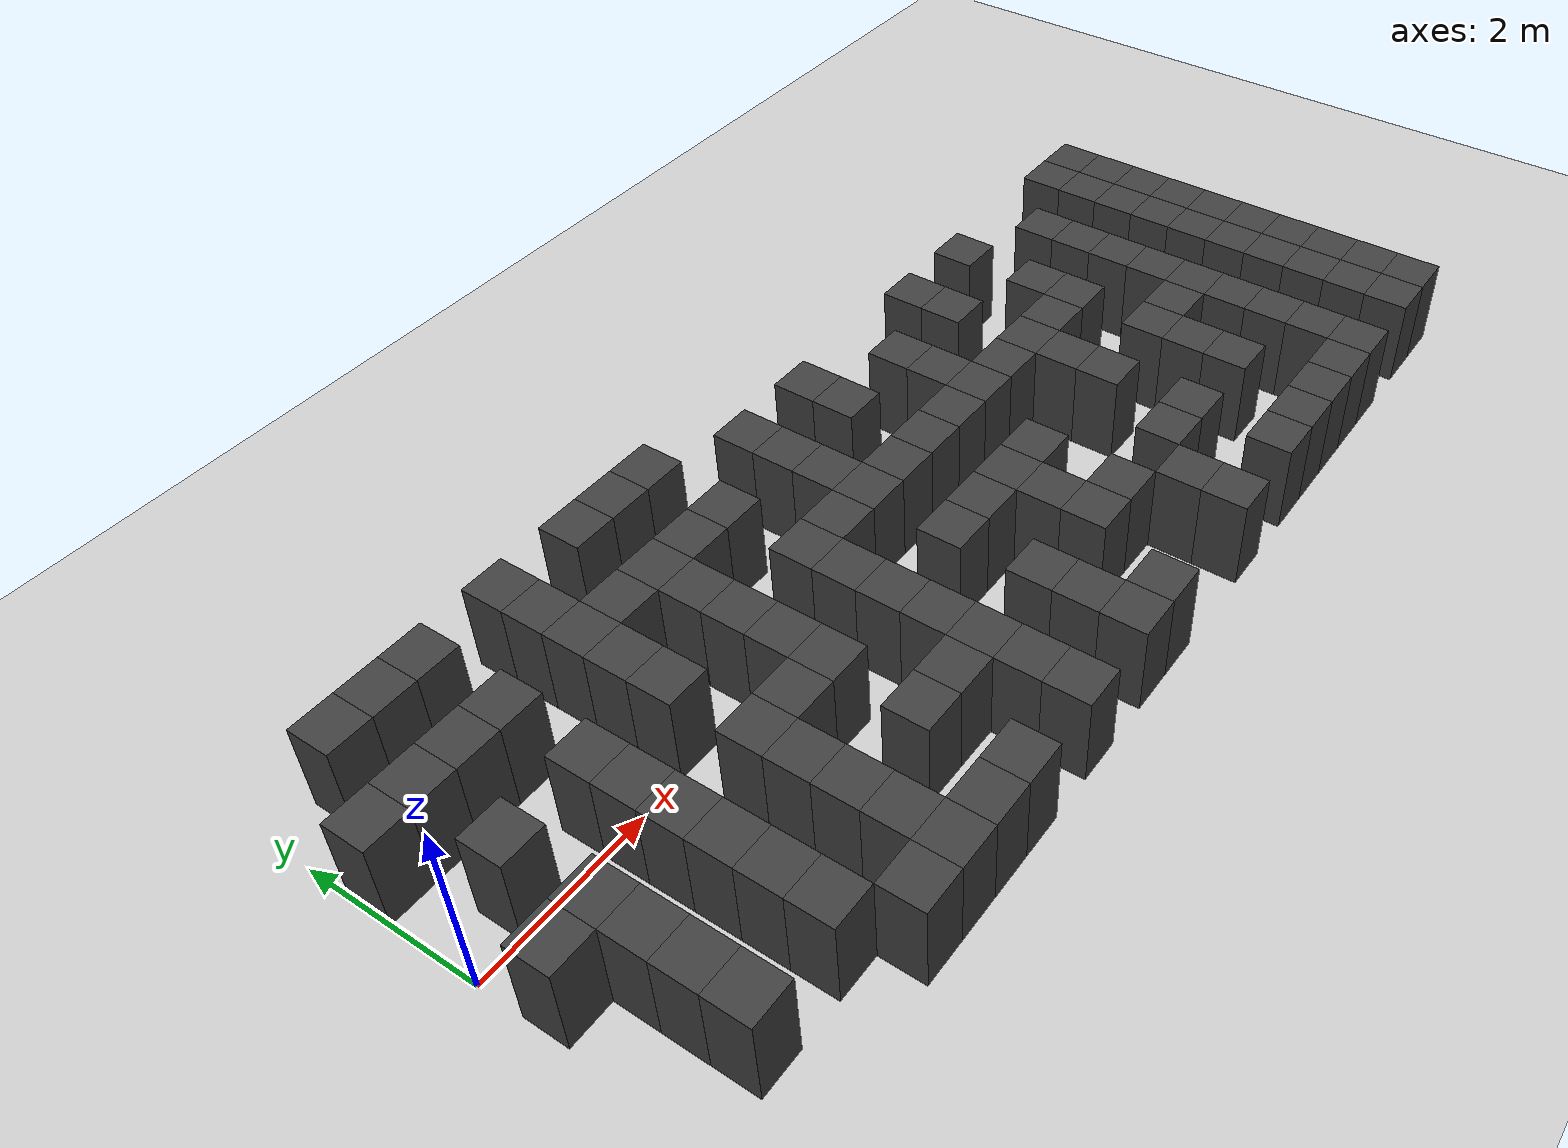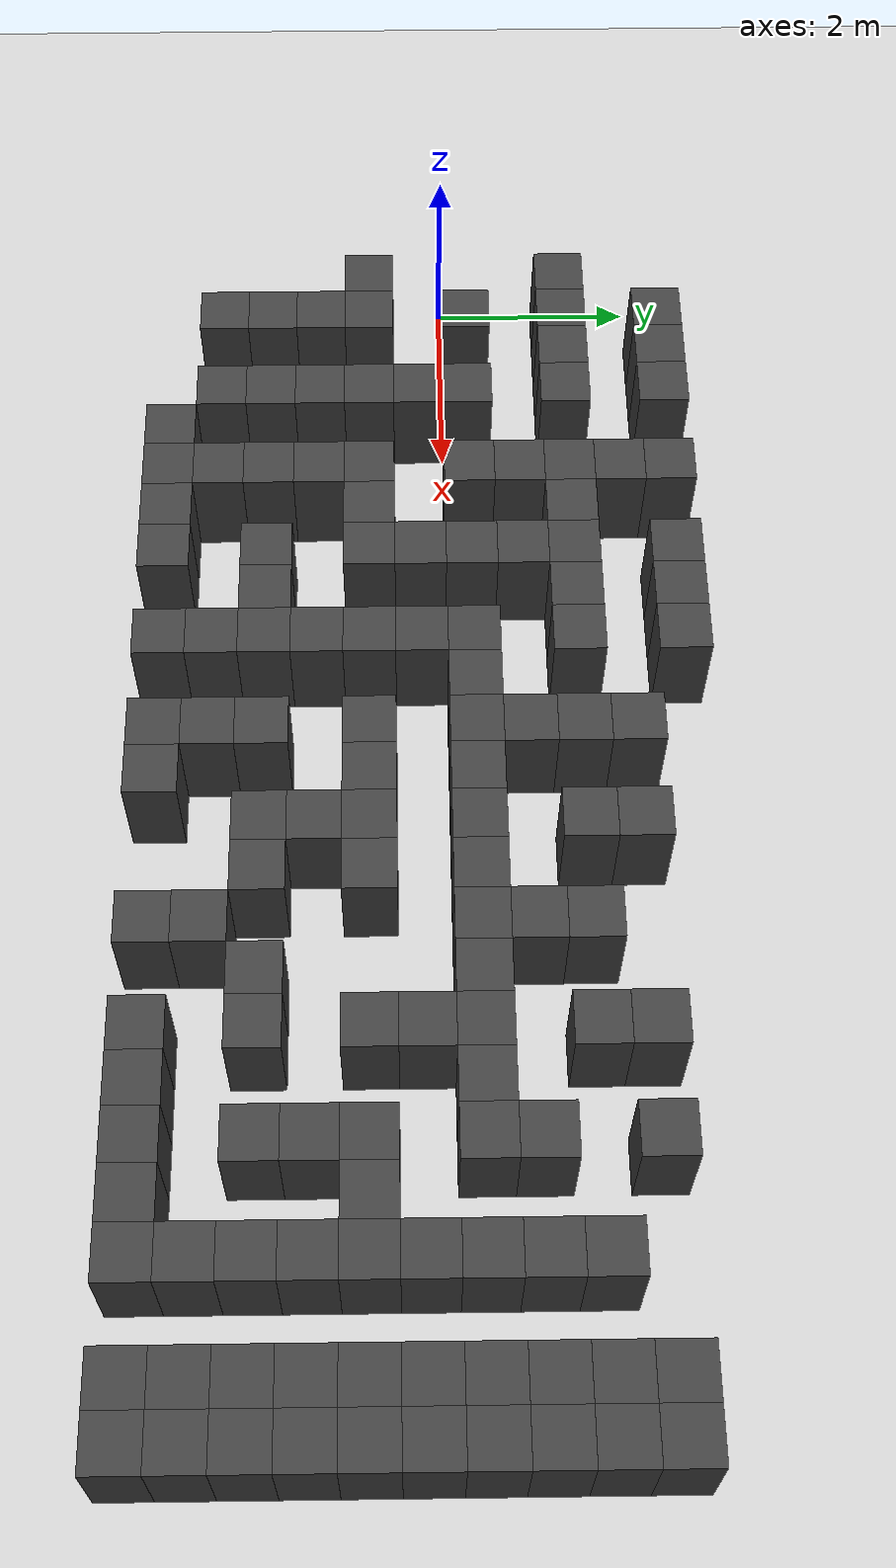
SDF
<sdf version="1.7">
 <world name="map_17508">
  <model name="ground_plane">
   <static>true</static>
   <link name="link">
    <collision name="collision">
     <geometry><plane><normal>0 0 1</normal><size>200 200</size></plane></geometry>
    </collision>
    <visual name="visual">
     <geometry><plane><normal>0 0 1</normal><size>200 200</size></plane></geometry>
     <material><ambient>0.8 0.8 0.8 1</ambient><diffuse>0.8 0.8 0.8 1</diffuse></material>
    </visual>
   </link>
  </model>
  <model name="maze_environment">
   <static>true</static>
   <link name="wall_510">
    <pose>0.750 2.250 0.500 0 0 0</pose>
    <collision name="col"><geometry><box><size>0.5 0.5 1.0</size></box></geometry></collision>
    <visual name="vis">
     <geometry><box><size>0.5 0.5 1.0</size></box></geometry>
     <material><ambient>0.15 0.15 0.15 1</ambient><diffuse>0.25 0.25 0.25 1</diffuse></material>
    </visual>
   </link>
   <link name="wall_511">
    <pose>1.250 2.250 0.500 0 0 0</pose>
    <collision name="col"><geometry><box><size>0.5 0.5 1.0</size></box></geometry></collision>
    <visual name="vis">
     <geometry><box><size>0.5 0.5 1.0</size></box></geometry>
     <material><ambient>0.15 0.15 0.15 1</ambient><diffuse>0.25 0.25 0.25 1</diffuse></material>
    </visual>
   </link>
   <link name="wall_512">
    <pose>1.750 2.250 0.500 0 0 0</pose>
    <collision name="col"><geometry><box><size>0.5 0.5 1.0</size></box></geometry></collision>
    <visual name="vis">
     <geometry><box><size>0.5 0.5 1.0</size></box></geometry>
     <material><ambient>0.15 0.15 0.15 1</ambient><diffuse>0.25 0.25 0.25 1</diffuse></material>
    </visual>
   </link>
   <link name="wall_513">
    <pose>2.750 2.250 0.500 0 0 0</pose>
    <collision name="col"><geometry><box><size>0.5 0.5 1.0</size></box></geometry></collision>
    <visual name="vis">
     <geometry><box><size>0.5 0.5 1.0</size></box></geometry>
     <material><ambient>0.15 0.15 0.15 1</ambient><diffuse>0.25 0.25 0.25 1</diffuse></material>
    </visual>
   </link>
   <link name="wall_514">
    <pose>3.750 2.250 0.500 0 0 0</pose>
    <collision name="col"><geometry><box><size>0.5 0.5 1.0</size></box></geometry></collision>
    <visual name="vis">
     <geometry><box><size>0.5 0.5 1.0</size></box></geometry>
     <material><ambient>0.15 0.15 0.15 1</ambient><diffuse>0.25 0.25 0.25 1</diffuse></material>
    </visual>
   </link>
   <link name="wall_515">
    <pose>4.250 2.250 0.500 0 0 0</pose>
    <collision name="col"><geometry><box><size>0.5 0.5 1.0</size></box></geometry></collision>
    <visual name="vis">
     <geometry><box><size>0.5 0.5 1.0</size></box></geometry>
     <material><ambient>0.15 0.15 0.15 1</ambient><diffuse>0.25 0.25 0.25 1</diffuse></material>
    </visual>
   </link>
   <link name="wall_516">
    <pose>4.750 2.250 0.500 0 0 0</pose>
    <collision name="col"><geometry><box><size>0.5 0.5 1.0</size></box></geometry></collision>
    <visual name="vis">
     <geometry><box><size>0.5 0.5 1.0</size></box></geometry>
     <material><ambient>0.15 0.15 0.15 1</ambient><diffuse>0.25 0.25 0.25 1</diffuse></material>
    </visual>
   </link>
   <link name="wall_535">
    <pose>2.750 1.750 0.500 0 0 0</pose>
    <collision name="col"><geometry><box><size>0.5 0.5 1.0</size></box></geometry></collision>
    <visual name="vis">
     <geometry><box><size>0.5 0.5 1.0</size></box></geometry>
     <material><ambient>0.15 0.15 0.15 1</ambient><diffuse>0.25 0.25 0.25 1</diffuse></material>
    </visual>
   </link>
   <link name="wall_536">
    <pose>5.750 1.750 0.500 0 0 0</pose>
    <collision name="col"><geometry><box><size>0.5 0.5 1.0</size></box></geometry></collision>
    <visual name="vis">
     <geometry><box><size>0.5 0.5 1.0</size></box></geometry>
     <material><ambient>0.15 0.15 0.15 1</ambient><diffuse>0.25 0.25 0.25 1</diffuse></material>
    </visual>
   </link>
   <link name="wall_537">
    <pose>6.750 1.750 0.500 0 0 0</pose>
    <collision name="col"><geometry><box><size>0.5 0.5 1.0</size></box></geometry></collision>
    <visual name="vis">
     <geometry><box><size>0.5 0.5 1.0</size></box></geometry>
     <material><ambient>0.15 0.15 0.15 1</ambient><diffuse>0.25 0.25 0.25 1</diffuse></material>
    </visual>
   </link>
   <link name="wall_538">
    <pose>8.750 1.750 0.500 0 0 0</pose>
    <collision name="col"><geometry><box><size>0.5 0.5 1.0</size></box></geometry></collision>
    <visual name="vis">
     <geometry><box><size>0.5 0.5 1.0</size></box></geometry>
     <material><ambient>0.15 0.15 0.15 1</ambient><diffuse>0.25 0.25 0.25 1</diffuse></material>
    </visual>
   </link>
   <link name="wall_539">
    <pose>9.750 1.750 0.500 0 0 0</pose>
    <collision name="col"><geometry><box><size>0.5 0.5 1.0</size></box></geometry></collision>
    <visual name="vis">
     <geometry><box><size>0.5 0.5 1.0</size></box></geometry>
     <material><ambient>0.15 0.15 0.15 1</ambient><diffuse>0.25 0.25 0.25 1</diffuse></material>
    </visual>
   </link>
   <link name="wall_540">
    <pose>11.750 1.750 0.500 0 0 0</pose>
    <collision name="col"><geometry><box><size>0.5 0.5 1.0</size></box></geometry></collision>
    <visual name="vis">
     <geometry><box><size>0.5 0.5 1.0</size></box></geometry>
     <material><ambient>0.15 0.15 0.15 1</ambient><diffuse>0.25 0.25 0.25 1</diffuse></material>
    </visual>
   </link>
   <link name="wall_541">
    <pose>12.250 1.750 0.500 0 0 0</pose>
    <collision name="col"><geometry><box><size>0.5 0.5 1.0</size></box></geometry></collision>
    <visual name="vis">
     <geometry><box><size>0.5 0.5 1.0</size></box></geometry>
     <material><ambient>0.15 0.15 0.15 1</ambient><diffuse>0.25 0.25 0.25 1</diffuse></material>
    </visual>
   </link>
   <link name="wall_560">
    <pose>0.250 1.250 0.500 0 0 0</pose>
    <collision name="col"><geometry><box><size>0.5 0.5 1.0</size></box></geometry></collision>
    <visual name="vis">
     <geometry><box><size>0.5 0.5 1.0</size></box></geometry>
     <material><ambient>0.15 0.15 0.15 1</ambient><diffuse>0.25 0.25 0.25 1</diffuse></material>
    </visual>
   </link>
   <link name="wall_561">
    <pose>0.750 1.250 0.500 0 0 0</pose>
    <collision name="col"><geometry><box><size>0.5 0.5 1.0</size></box></geometry></collision>
    <visual name="vis">
     <geometry><box><size>0.5 0.5 1.0</size></box></geometry>
     <material><ambient>0.15 0.15 0.15 1</ambient><diffuse>0.25 0.25 0.25 1</diffuse></material>
    </visual>
   </link>
   <link name="wall_562">
    <pose>1.250 1.250 0.500 0 0 0</pose>
    <collision name="col"><geometry><box><size>0.5 0.5 1.0</size></box></geometry></collision>
    <visual name="vis">
     <geometry><box><size>0.5 0.5 1.0</size></box></geometry>
     <material><ambient>0.15 0.15 0.15 1</ambient><diffuse>0.25 0.25 0.25 1</diffuse></material>
    </visual>
   </link>
   <link name="wall_563">
    <pose>1.750 1.250 0.500 0 0 0</pose>
    <collision name="col"><geometry><box><size>0.5 0.5 1.0</size></box></geometry></collision>
    <visual name="vis">
     <geometry><box><size>0.5 0.5 1.0</size></box></geometry>
     <material><ambient>0.15 0.15 0.15 1</ambient><diffuse>0.25 0.25 0.25 1</diffuse></material>
    </visual>
   </link>
   <link name="wall_564">
    <pose>2.750 1.250 0.500 0 0 0</pose>
    <collision name="col"><geometry><box><size>0.5 0.5 1.0</size></box></geometry></collision>
    <visual name="vis">
     <geometry><box><size>0.5 0.5 1.0</size></box></geometry>
     <material><ambient>0.15 0.15 0.15 1</ambient><diffuse>0.25 0.25 0.25 1</diffuse></material>
    </visual>
   </link>
   <link name="wall_565">
    <pose>3.250 1.250 0.500 0 0 0</pose>
    <collision name="col"><geometry><box><size>0.5 0.5 1.0</size></box></geometry></collision>
    <visual name="vis">
     <geometry><box><size>0.5 0.5 1.0</size></box></geometry>
     <material><ambient>0.15 0.15 0.15 1</ambient><diffuse>0.25 0.25 0.25 1</diffuse></material>
    </visual>
   </link>
   <link name="wall_566">
    <pose>3.750 1.250 0.500 0 0 0</pose>
    <collision name="col"><geometry><box><size>0.5 0.5 1.0</size></box></geometry></collision>
    <visual name="vis">
     <geometry><box><size>0.5 0.5 1.0</size></box></geometry>
     <material><ambient>0.15 0.15 0.15 1</ambient><diffuse>0.25 0.25 0.25 1</diffuse></material>
    </visual>
   </link>
   <link name="wall_567">
    <pose>4.250 1.250 0.500 0 0 0</pose>
    <collision name="col"><geometry><box><size>0.5 0.5 1.0</size></box></geometry></collision>
    <visual name="vis">
     <geometry><box><size>0.5 0.5 1.0</size></box></geometry>
     <material><ambient>0.15 0.15 0.15 1</ambient><diffuse>0.25 0.25 0.25 1</diffuse></material>
    </visual>
   </link>
   <link name="wall_568">
    <pose>4.750 1.250 0.500 0 0 0</pose>
    <collision name="col"><geometry><box><size>0.5 0.5 1.0</size></box></geometry></collision>
    <visual name="vis">
     <geometry><box><size>0.5 0.5 1.0</size></box></geometry>
     <material><ambient>0.15 0.15 0.15 1</ambient><diffuse>0.25 0.25 0.25 1</diffuse></material>
    </visual>
   </link>
   <link name="wall_569">
    <pose>5.750 1.250 0.500 0 0 0</pose>
    <collision name="col"><geometry><box><size>0.5 0.5 1.0</size></box></geometry></collision>
    <visual name="vis">
     <geometry><box><size>0.5 0.5 1.0</size></box></geometry>
     <material><ambient>0.15 0.15 0.15 1</ambient><diffuse>0.25 0.25 0.25 1</diffuse></material>
    </visual>
   </link>
   <link name="wall_570">
    <pose>6.750 1.250 0.500 0 0 0</pose>
    <collision name="col"><geometry><box><size>0.5 0.5 1.0</size></box></geometry></collision>
    <visual name="vis">
     <geometry><box><size>0.5 0.5 1.0</size></box></geometry>
     <material><ambient>0.15 0.15 0.15 1</ambient><diffuse>0.25 0.25 0.25 1</diffuse></material>
    </visual>
   </link>
   <link name="wall_571">
    <pose>7.750 1.250 0.500 0 0 0</pose>
    <collision name="col"><geometry><box><size>0.5 0.5 1.0</size></box></geometry></collision>
    <visual name="vis">
     <geometry><box><size>0.5 0.5 1.0</size></box></geometry>
     <material><ambient>0.15 0.15 0.15 1</ambient><diffuse>0.25 0.25 0.25 1</diffuse></material>
    </visual>
   </link>
   <link name="wall_572">
    <pose>8.750 1.250 0.500 0 0 0</pose>
    <collision name="col"><geometry><box><size>0.5 0.5 1.0</size></box></geometry></collision>
    <visual name="vis">
     <geometry><box><size>0.5 0.5 1.0</size></box></geometry>
     <material><ambient>0.15 0.15 0.15 1</ambient><diffuse>0.25 0.25 0.25 1</diffuse></material>
    </visual>
   </link>
   <link name="wall_573">
    <pose>10.750 1.250 0.500 0 0 0</pose>
    <collision name="col"><geometry><box><size>0.5 0.5 1.0</size></box></geometry></collision>
    <visual name="vis">
     <geometry><box><size>0.5 0.5 1.0</size></box></geometry>
     <material><ambient>0.15 0.15 0.15 1</ambient><diffuse>0.25 0.25 0.25 1</diffuse></material>
    </visual>
   </link>
   <link name="wall_574">
    <pose>11.750 1.250 0.500 0 0 0</pose>
    <collision name="col"><geometry><box><size>0.5 0.5 1.0</size></box></geometry></collision>
    <visual name="vis">
     <geometry><box><size>0.5 0.5 1.0</size></box></geometry>
     <material><ambient>0.15 0.15 0.15 1</ambient><diffuse>0.25 0.25 0.25 1</diffuse></material>
    </visual>
   </link>
   <link name="wall_575">
    <pose>12.250 1.250 0.500 0 0 0</pose>
    <collision name="col"><geometry><box><size>0.5 0.5 1.0</size></box></geometry></collision>
    <visual name="vis">
     <geometry><box><size>0.5 0.5 1.0</size></box></geometry>
     <material><ambient>0.15 0.15 0.15 1</ambient><diffuse>0.25 0.25 0.25 1</diffuse></material>
    </visual>
   </link>
   <link name="wall_584">
    <pose>2.750 0.750 0.500 0 0 0</pose>
    <collision name="col"><geometry><box><size>0.5 0.5 1.0</size></box></geometry></collision>
    <visual name="vis">
     <geometry><box><size>0.5 0.5 1.0</size></box></geometry>
     <material><ambient>0.15 0.15 0.15 1</ambient><diffuse>0.25 0.25 0.25 1</diffuse></material>
    </visual>
   </link>
   <link name="wall_585">
    <pose>3.750 0.750 0.500 0 0 0</pose>
    <collision name="col"><geometry><box><size>0.5 0.5 1.0</size></box></geometry></collision>
    <visual name="vis">
     <geometry><box><size>0.5 0.5 1.0</size></box></geometry>
     <material><ambient>0.15 0.15 0.15 1</ambient><diffuse>0.25 0.25 0.25 1</diffuse></material>
    </visual>
   </link>
   <link name="wall_586">
    <pose>5.750 0.750 0.500 0 0 0</pose>
    <collision name="col"><geometry><box><size>0.5 0.5 1.0</size></box></geometry></collision>
    <visual name="vis">
     <geometry><box><size>0.5 0.5 1.0</size></box></geometry>
     <material><ambient>0.15 0.15 0.15 1</ambient><diffuse>0.25 0.25 0.25 1</diffuse></material>
    </visual>
   </link>
   <link name="wall_587">
    <pose>7.750 0.750 0.500 0 0 0</pose>
    <collision name="col"><geometry><box><size>0.5 0.5 1.0</size></box></geometry></collision>
    <visual name="vis">
     <geometry><box><size>0.5 0.5 1.0</size></box></geometry>
     <material><ambient>0.15 0.15 0.15 1</ambient><diffuse>0.25 0.25 0.25 1</diffuse></material>
    </visual>
   </link>
   <link name="wall_588">
    <pose>9.750 0.750 0.500 0 0 0</pose>
    <collision name="col"><geometry><box><size>0.5 0.5 1.0</size></box></geometry></collision>
    <visual name="vis">
     <geometry><box><size>0.5 0.5 1.0</size></box></geometry>
     <material><ambient>0.15 0.15 0.15 1</ambient><diffuse>0.25 0.25 0.25 1</diffuse></material>
    </visual>
   </link>
   <link name="wall_589">
    <pose>10.750 0.750 0.500 0 0 0</pose>
    <collision name="col"><geometry><box><size>0.5 0.5 1.0</size></box></geometry></collision>
    <visual name="vis">
     <geometry><box><size>0.5 0.5 1.0</size></box></geometry>
     <material><ambient>0.15 0.15 0.15 1</ambient><diffuse>0.25 0.25 0.25 1</diffuse></material>
    </visual>
   </link>
   <link name="wall_590">
    <pose>11.750 0.750 0.500 0 0 0</pose>
    <collision name="col"><geometry><box><size>0.5 0.5 1.0</size></box></geometry></collision>
    <visual name="vis">
     <geometry><box><size>0.5 0.5 1.0</size></box></geometry>
     <material><ambient>0.15 0.15 0.15 1</ambient><diffuse>0.25 0.25 0.25 1</diffuse></material>
    </visual>
   </link>
   <link name="wall_591">
    <pose>12.250 0.750 0.500 0 0 0</pose>
    <collision name="col"><geometry><box><size>0.5 0.5 1.0</size></box></geometry></collision>
    <visual name="vis">
     <geometry><box><size>0.5 0.5 1.0</size></box></geometry>
     <material><ambient>0.15 0.15 0.15 1</ambient><diffuse>0.25 0.25 0.25 1</diffuse></material>
    </visual>
   </link>
   <link name="wall_608">
    <pose>0.750 0.250 0.500 0 0 0</pose>
    <collision name="col"><geometry><box><size>0.5 0.5 1.0</size></box></geometry></collision>
    <visual name="vis">
     <geometry><box><size>0.5 0.5 1.0</size></box></geometry>
     <material><ambient>0.15 0.15 0.15 1</ambient><diffuse>0.25 0.25 0.25 1</diffuse></material>
    </visual>
   </link>
   <link name="wall_609">
    <pose>1.750 0.250 0.500 0 0 0</pose>
    <collision name="col"><geometry><box><size>0.5 0.5 1.0</size></box></geometry></collision>
    <visual name="vis">
     <geometry><box><size>0.5 0.5 1.0</size></box></geometry>
     <material><ambient>0.15 0.15 0.15 1</ambient><diffuse>0.25 0.25 0.25 1</diffuse></material>
    </visual>
   </link>
   <link name="wall_610">
    <pose>2.750 0.250 0.500 0 0 0</pose>
    <collision name="col"><geometry><box><size>0.5 0.5 1.0</size></box></geometry></collision>
    <visual name="vis">
     <geometry><box><size>0.5 0.5 1.0</size></box></geometry>
     <material><ambient>0.15 0.15 0.15 1</ambient><diffuse>0.25 0.25 0.25 1</diffuse></material>
    </visual>
   </link>
   <link name="wall_611">
    <pose>3.750 0.250 0.500 0 0 0</pose>
    <collision name="col"><geometry><box><size>0.5 0.5 1.0</size></box></geometry></collision>
    <visual name="vis">
     <geometry><box><size>0.5 0.5 1.0</size></box></geometry>
     <material><ambient>0.15 0.15 0.15 1</ambient><diffuse>0.25 0.25 0.25 1</diffuse></material>
    </visual>
   </link>
   <link name="wall_612">
    <pose>4.750 0.250 0.500 0 0 0</pose>
    <collision name="col"><geometry><box><size>0.5 0.5 1.0</size></box></geometry></collision>
    <visual name="vis">
     <geometry><box><size>0.5 0.5 1.0</size></box></geometry>
     <material><ambient>0.15 0.15 0.15 1</ambient><diffuse>0.25 0.25 0.25 1</diffuse></material>
    </visual>
   </link>
   <link name="wall_613">
    <pose>5.250 0.250 0.500 0 0 0</pose>
    <collision name="col"><geometry><box><size>0.5 0.5 1.0</size></box></geometry></collision>
    <visual name="vis">
     <geometry><box><size>0.5 0.5 1.0</size></box></geometry>
     <material><ambient>0.15 0.15 0.15 1</ambient><diffuse>0.25 0.25 0.25 1</diffuse></material>
    </visual>
   </link>
   <link name="wall_614">
    <pose>5.750 0.250 0.500 0 0 0</pose>
    <collision name="col"><geometry><box><size>0.5 0.5 1.0</size></box></geometry></collision>
    <visual name="vis">
     <geometry><box><size>0.5 0.5 1.0</size></box></geometry>
     <material><ambient>0.15 0.15 0.15 1</ambient><diffuse>0.25 0.25 0.25 1</diffuse></material>
    </visual>
   </link>
   <link name="wall_615">
    <pose>6.250 0.250 0.500 0 0 0</pose>
    <collision name="col"><geometry><box><size>0.5 0.5 1.0</size></box></geometry></collision>
    <visual name="vis">
     <geometry><box><size>0.5 0.5 1.0</size></box></geometry>
     <material><ambient>0.15 0.15 0.15 1</ambient><diffuse>0.25 0.25 0.25 1</diffuse></material>
    </visual>
   </link>
   <link name="wall_616">
    <pose>6.750 0.250 0.500 0 0 0</pose>
    <collision name="col"><geometry><box><size>0.5 0.5 1.0</size></box></geometry></collision>
    <visual name="vis">
     <geometry><box><size>0.5 0.5 1.0</size></box></geometry>
     <material><ambient>0.15 0.15 0.15 1</ambient><diffuse>0.25 0.25 0.25 1</diffuse></material>
    </visual>
   </link>
   <link name="wall_617">
    <pose>7.250 0.250 0.500 0 0 0</pose>
    <collision name="col"><geometry><box><size>0.5 0.5 1.0</size></box></geometry></collision>
    <visual name="vis">
     <geometry><box><size>0.5 0.5 1.0</size></box></geometry>
     <material><ambient>0.15 0.15 0.15 1</ambient><diffuse>0.25 0.25 0.25 1</diffuse></material>
    </visual>
   </link>
   <link name="wall_618">
    <pose>7.750 0.250 0.500 0 0 0</pose>
    <collision name="col"><geometry><box><size>0.5 0.5 1.0</size></box></geometry></collision>
    <visual name="vis">
     <geometry><box><size>0.5 0.5 1.0</size></box></geometry>
     <material><ambient>0.15 0.15 0.15 1</ambient><diffuse>0.25 0.25 0.25 1</diffuse></material>
    </visual>
   </link>
   <link name="wall_619">
    <pose>8.250 0.250 0.500 0 0 0</pose>
    <collision name="col"><geometry><box><size>0.5 0.5 1.0</size></box></geometry></collision>
    <visual name="vis">
     <geometry><box><size>0.5 0.5 1.0</size></box></geometry>
     <material><ambient>0.15 0.15 0.15 1</ambient><diffuse>0.25 0.25 0.25 1</diffuse></material>
    </visual>
   </link>
   <link name="wall_620">
    <pose>8.750 0.250 0.500 0 0 0</pose>
    <collision name="col"><geometry><box><size>0.5 0.5 1.0</size></box></geometry></collision>
    <visual name="vis">
     <geometry><box><size>0.5 0.5 1.0</size></box></geometry>
     <material><ambient>0.15 0.15 0.15 1</ambient><diffuse>0.25 0.25 0.25 1</diffuse></material>
    </visual>
   </link>
   <link name="wall_621">
    <pose>9.250 0.250 0.500 0 0 0</pose>
    <collision name="col"><geometry><box><size>0.5 0.5 1.0</size></box></geometry></collision>
    <visual name="vis">
     <geometry><box><size>0.5 0.5 1.0</size></box></geometry>
     <material><ambient>0.15 0.15 0.15 1</ambient><diffuse>0.25 0.25 0.25 1</diffuse></material>
    </visual>
   </link>
   <link name="wall_622">
    <pose>9.750 0.250 0.500 0 0 0</pose>
    <collision name="col"><geometry><box><size>0.5 0.5 1.0</size></box></geometry></collision>
    <visual name="vis">
     <geometry><box><size>0.5 0.5 1.0</size></box></geometry>
     <material><ambient>0.15 0.15 0.15 1</ambient><diffuse>0.25 0.25 0.25 1</diffuse></material>
    </visual>
   </link>
   <link name="wall_623">
    <pose>10.750 0.250 0.500 0 0 0</pose>
    <collision name="col"><geometry><box><size>0.5 0.5 1.0</size></box></geometry></collision>
    <visual name="vis">
     <geometry><box><size>0.5 0.5 1.0</size></box></geometry>
     <material><ambient>0.15 0.15 0.15 1</ambient><diffuse>0.25 0.25 0.25 1</diffuse></material>
    </visual>
   </link>
   <link name="wall_624">
    <pose>11.750 0.250 0.500 0 0 0</pose>
    <collision name="col"><geometry><box><size>0.5 0.5 1.0</size></box></geometry></collision>
    <visual name="vis">
     <geometry><box><size>0.5 0.5 1.0</size></box></geometry>
     <material><ambient>0.15 0.15 0.15 1</ambient><diffuse>0.25 0.25 0.25 1</diffuse></material>
    </visual>
   </link>
   <link name="wall_625">
    <pose>12.250 0.250 0.500 0 0 0</pose>
    <collision name="col"><geometry><box><size>0.5 0.5 1.0</size></box></geometry></collision>
    <visual name="vis">
     <geometry><box><size>0.5 0.5 1.0</size></box></geometry>
     <material><ambient>0.15 0.15 0.15 1</ambient><diffuse>0.25 0.25 0.25 1</diffuse></material>
    </visual>
   </link>
   <link name="wall_632">
    <pose>1.750 -0.250 0.500 0 0 0</pose>
    <collision name="col"><geometry><box><size>0.5 0.5 1.0</size></box></geometry></collision>
    <visual name="vis">
     <geometry><box><size>0.5 0.5 1.0</size></box></geometry>
     <material><ambient>0.15 0.15 0.15 1</ambient><diffuse>0.25 0.25 0.25 1</diffuse></material>
    </visual>
   </link>
   <link name="wall_633">
    <pose>3.750 -0.250 0.500 0 0 0</pose>
    <collision name="col"><geometry><box><size>0.5 0.5 1.0</size></box></geometry></collision>
    <visual name="vis">
     <geometry><box><size>0.5 0.5 1.0</size></box></geometry>
     <material><ambient>0.15 0.15 0.15 1</ambient><diffuse>0.25 0.25 0.25 1</diffuse></material>
    </visual>
   </link>
   <link name="wall_634">
    <pose>4.750 -0.250 0.500 0 0 0</pose>
    <collision name="col"><geometry><box><size>0.5 0.5 1.0</size></box></geometry></collision>
    <visual name="vis">
     <geometry><box><size>0.5 0.5 1.0</size></box></geometry>
     <material><ambient>0.15 0.15 0.15 1</ambient><diffuse>0.25 0.25 0.25 1</diffuse></material>
    </visual>
   </link>
   <link name="wall_635">
    <pose>8.750 -0.250 0.500 0 0 0</pose>
    <collision name="col"><geometry><box><size>0.5 0.5 1.0</size></box></geometry></collision>
    <visual name="vis">
     <geometry><box><size>0.5 0.5 1.0</size></box></geometry>
     <material><ambient>0.15 0.15 0.15 1</ambient><diffuse>0.25 0.25 0.25 1</diffuse></material>
    </visual>
   </link>
   <link name="wall_636">
    <pose>10.750 -0.250 0.500 0 0 0</pose>
    <collision name="col"><geometry><box><size>0.5 0.5 1.0</size></box></geometry></collision>
    <visual name="vis">
     <geometry><box><size>0.5 0.5 1.0</size></box></geometry>
     <material><ambient>0.15 0.15 0.15 1</ambient><diffuse>0.25 0.25 0.25 1</diffuse></material>
    </visual>
   </link>
   <link name="wall_637">
    <pose>11.750 -0.250 0.500 0 0 0</pose>
    <collision name="col"><geometry><box><size>0.5 0.5 1.0</size></box></geometry></collision>
    <visual name="vis">
     <geometry><box><size>0.5 0.5 1.0</size></box></geometry>
     <material><ambient>0.15 0.15 0.15 1</ambient><diffuse>0.25 0.25 0.25 1</diffuse></material>
    </visual>
   </link>
   <link name="wall_638">
    <pose>12.250 -0.250 0.500 0 0 0</pose>
    <collision name="col"><geometry><box><size>0.5 0.5 1.0</size></box></geometry></collision>
    <visual name="vis">
     <geometry><box><size>0.5 0.5 1.0</size></box></geometry>
     <material><ambient>0.15 0.15 0.15 1</ambient><diffuse>0.25 0.25 0.25 1</diffuse></material>
    </visual>
   </link>
   <link name="wall_657">
    <pose>0.250 -0.750 0.500 0 0 0</pose>
    <collision name="col"><geometry><box><size>0.5 0.5 1.0</size></box></geometry></collision>
    <visual name="vis">
     <geometry><box><size>0.5 0.5 1.0</size></box></geometry>
     <material><ambient>0.15 0.15 0.15 1</ambient><diffuse>0.25 0.25 0.25 1</diffuse></material>
    </visual>
   </link>
   <link name="wall_658">
    <pose>0.750 -0.750 0.500 0 0 0</pose>
    <collision name="col"><geometry><box><size>0.5 0.5 1.0</size></box></geometry></collision>
    <visual name="vis">
     <geometry><box><size>0.5 0.5 1.0</size></box></geometry>
     <material><ambient>0.15 0.15 0.15 1</ambient><diffuse>0.25 0.25 0.25 1</diffuse></material>
    </visual>
   </link>
   <link name="wall_659">
    <pose>1.750 -0.750 0.500 0 0 0</pose>
    <collision name="col"><geometry><box><size>0.5 0.5 1.0</size></box></geometry></collision>
    <visual name="vis">
     <geometry><box><size>0.5 0.5 1.0</size></box></geometry>
     <material><ambient>0.15 0.15 0.15 1</ambient><diffuse>0.25 0.25 0.25 1</diffuse></material>
    </visual>
   </link>
   <link name="wall_660">
    <pose>2.750 -0.750 0.500 0 0 0</pose>
    <collision name="col"><geometry><box><size>0.5 0.5 1.0</size></box></geometry></collision>
    <visual name="vis">
     <geometry><box><size>0.5 0.5 1.0</size></box></geometry>
     <material><ambient>0.15 0.15 0.15 1</ambient><diffuse>0.25 0.25 0.25 1</diffuse></material>
    </visual>
   </link>
   <link name="wall_661">
    <pose>3.250 -0.750 0.500 0 0 0</pose>
    <collision name="col"><geometry><box><size>0.5 0.5 1.0</size></box></geometry></collision>
    <visual name="vis">
     <geometry><box><size>0.5 0.5 1.0</size></box></geometry>
     <material><ambient>0.15 0.15 0.15 1</ambient><diffuse>0.25 0.25 0.25 1</diffuse></material>
    </visual>
   </link>
   <link name="wall_662">
    <pose>3.750 -0.750 0.500 0 0 0</pose>
    <collision name="col"><geometry><box><size>0.5 0.5 1.0</size></box></geometry></collision>
    <visual name="vis">
     <geometry><box><size>0.5 0.5 1.0</size></box></geometry>
     <material><ambient>0.15 0.15 0.15 1</ambient><diffuse>0.25 0.25 0.25 1</diffuse></material>
    </visual>
   </link>
   <link name="wall_663">
    <pose>4.750 -0.750 0.500 0 0 0</pose>
    <collision name="col"><geometry><box><size>0.5 0.5 1.0</size></box></geometry></collision>
    <visual name="vis">
     <geometry><box><size>0.5 0.5 1.0</size></box></geometry>
     <material><ambient>0.15 0.15 0.15 1</ambient><diffuse>0.25 0.25 0.25 1</diffuse></material>
    </visual>
   </link>
   <link name="wall_664">
    <pose>5.750 -0.750 0.500 0 0 0</pose>
    <collision name="col"><geometry><box><size>0.5 0.5 1.0</size></box></geometry></collision>
    <visual name="vis">
     <geometry><box><size>0.5 0.5 1.0</size></box></geometry>
     <material><ambient>0.15 0.15 0.15 1</ambient><diffuse>0.25 0.25 0.25 1</diffuse></material>
    </visual>
   </link>
   <link name="wall_665">
    <pose>6.250 -0.750 0.500 0 0 0</pose>
    <collision name="col"><geometry><box><size>0.5 0.5 1.0</size></box></geometry></collision>
    <visual name="vis">
     <geometry><box><size>0.5 0.5 1.0</size></box></geometry>
     <material><ambient>0.15 0.15 0.15 1</ambient><diffuse>0.25 0.25 0.25 1</diffuse></material>
    </visual>
   </link>
   <link name="wall_666">
    <pose>6.750 -0.750 0.500 0 0 0</pose>
    <collision name="col"><geometry><box><size>0.5 0.5 1.0</size></box></geometry></collision>
    <visual name="vis">
     <geometry><box><size>0.5 0.5 1.0</size></box></geometry>
     <material><ambient>0.15 0.15 0.15 1</ambient><diffuse>0.25 0.25 0.25 1</diffuse></material>
    </visual>
   </link>
   <link name="wall_667">
    <pose>7.250 -0.750 0.500 0 0 0</pose>
    <collision name="col"><geometry><box><size>0.5 0.5 1.0</size></box></geometry></collision>
    <visual name="vis">
     <geometry><box><size>0.5 0.5 1.0</size></box></geometry>
     <material><ambient>0.15 0.15 0.15 1</ambient><diffuse>0.25 0.25 0.25 1</diffuse></material>
    </visual>
   </link>
   <link name="wall_668">
    <pose>8.750 -0.750 0.500 0 0 0</pose>
    <collision name="col"><geometry><box><size>0.5 0.5 1.0</size></box></geometry></collision>
    <visual name="vis">
     <geometry><box><size>0.5 0.5 1.0</size></box></geometry>
     <material><ambient>0.15 0.15 0.15 1</ambient><diffuse>0.25 0.25 0.25 1</diffuse></material>
    </visual>
   </link>
   <link name="wall_669">
    <pose>9.750 -0.750 0.500 0 0 0</pose>
    <collision name="col"><geometry><box><size>0.5 0.5 1.0</size></box></geometry></collision>
    <visual name="vis">
     <geometry><box><size>0.5 0.5 1.0</size></box></geometry>
     <material><ambient>0.15 0.15 0.15 1</ambient><diffuse>0.25 0.25 0.25 1</diffuse></material>
    </visual>
   </link>
   <link name="wall_670">
    <pose>10.250 -0.750 0.500 0 0 0</pose>
    <collision name="col"><geometry><box><size>0.5 0.5 1.0</size></box></geometry></collision>
    <visual name="vis">
     <geometry><box><size>0.5 0.5 1.0</size></box></geometry>
     <material><ambient>0.15 0.15 0.15 1</ambient><diffuse>0.25 0.25 0.25 1</diffuse></material>
    </visual>
   </link>
   <link name="wall_671">
    <pose>10.750 -0.750 0.500 0 0 0</pose>
    <collision name="col"><geometry><box><size>0.5 0.5 1.0</size></box></geometry></collision>
    <visual name="vis">
     <geometry><box><size>0.5 0.5 1.0</size></box></geometry>
     <material><ambient>0.15 0.15 0.15 1</ambient><diffuse>0.25 0.25 0.25 1</diffuse></material>
    </visual>
   </link>
   <link name="wall_672">
    <pose>11.750 -0.750 0.500 0 0 0</pose>
    <collision name="col"><geometry><box><size>0.5 0.5 1.0</size></box></geometry></collision>
    <visual name="vis">
     <geometry><box><size>0.5 0.5 1.0</size></box></geometry>
     <material><ambient>0.15 0.15 0.15 1</ambient><diffuse>0.25 0.25 0.25 1</diffuse></material>
    </visual>
   </link>
   <link name="wall_673">
    <pose>12.250 -0.750 0.500 0 0 0</pose>
    <collision name="col"><geometry><box><size>0.5 0.5 1.0</size></box></geometry></collision>
    <visual name="vis">
     <geometry><box><size>0.5 0.5 1.0</size></box></geometry>
     <material><ambient>0.15 0.15 0.15 1</ambient><diffuse>0.25 0.25 0.25 1</diffuse></material>
    </visual>
   </link>
   <link name="wall_680">
    <pose>0.750 -1.250 0.500 0 0 0</pose>
    <collision name="col"><geometry><box><size>0.5 0.5 1.0</size></box></geometry></collision>
    <visual name="vis">
     <geometry><box><size>0.5 0.5 1.0</size></box></geometry>
     <material><ambient>0.15 0.15 0.15 1</ambient><diffuse>0.25 0.25 0.25 1</diffuse></material>
    </visual>
   </link>
   <link name="wall_681">
    <pose>1.750 -1.250 0.500 0 0 0</pose>
    <collision name="col"><geometry><box><size>0.5 0.5 1.0</size></box></geometry></collision>
    <visual name="vis">
     <geometry><box><size>0.5 0.5 1.0</size></box></geometry>
     <material><ambient>0.15 0.15 0.15 1</ambient><diffuse>0.25 0.25 0.25 1</diffuse></material>
    </visual>
   </link>
   <link name="wall_682">
    <pose>2.750 -1.250 0.500 0 0 0</pose>
    <collision name="col"><geometry><box><size>0.5 0.5 1.0</size></box></geometry></collision>
    <visual name="vis">
     <geometry><box><size>0.5 0.5 1.0</size></box></geometry>
     <material><ambient>0.15 0.15 0.15 1</ambient><diffuse>0.25 0.25 0.25 1</diffuse></material>
    </visual>
   </link>
   <link name="wall_683">
    <pose>4.750 -1.250 0.500 0 0 0</pose>
    <collision name="col"><geometry><box><size>0.5 0.5 1.0</size></box></geometry></collision>
    <visual name="vis">
     <geometry><box><size>0.5 0.5 1.0</size></box></geometry>
     <material><ambient>0.15 0.15 0.15 1</ambient><diffuse>0.25 0.25 0.25 1</diffuse></material>
    </visual>
   </link>
   <link name="wall_684">
    <pose>6.750 -1.250 0.500 0 0 0</pose>
    <collision name="col"><geometry><box><size>0.5 0.5 1.0</size></box></geometry></collision>
    <visual name="vis">
     <geometry><box><size>0.5 0.5 1.0</size></box></geometry>
     <material><ambient>0.15 0.15 0.15 1</ambient><diffuse>0.25 0.25 0.25 1</diffuse></material>
    </visual>
   </link>
   <link name="wall_685">
    <pose>9.750 -1.250 0.500 0 0 0</pose>
    <collision name="col"><geometry><box><size>0.5 0.5 1.0</size></box></geometry></collision>
    <visual name="vis">
     <geometry><box><size>0.5 0.5 1.0</size></box></geometry>
     <material><ambient>0.15 0.15 0.15 1</ambient><diffuse>0.25 0.25 0.25 1</diffuse></material>
    </visual>
   </link>
   <link name="wall_686">
    <pose>10.750 -1.250 0.500 0 0 0</pose>
    <collision name="col"><geometry><box><size>0.5 0.5 1.0</size></box></geometry></collision>
    <visual name="vis">
     <geometry><box><size>0.5 0.5 1.0</size></box></geometry>
     <material><ambient>0.15 0.15 0.15 1</ambient><diffuse>0.25 0.25 0.25 1</diffuse></material>
    </visual>
   </link>
   <link name="wall_687">
    <pose>11.750 -1.250 0.500 0 0 0</pose>
    <collision name="col"><geometry><box><size>0.5 0.5 1.0</size></box></geometry></collision>
    <visual name="vis">
     <geometry><box><size>0.5 0.5 1.0</size></box></geometry>
     <material><ambient>0.15 0.15 0.15 1</ambient><diffuse>0.25 0.25 0.25 1</diffuse></material>
    </visual>
   </link>
   <link name="wall_688">
    <pose>12.250 -1.250 0.500 0 0 0</pose>
    <collision name="col"><geometry><box><size>0.5 0.5 1.0</size></box></geometry></collision>
    <visual name="vis">
     <geometry><box><size>0.5 0.5 1.0</size></box></geometry>
     <material><ambient>0.15 0.15 0.15 1</ambient><diffuse>0.25 0.25 0.25 1</diffuse></material>
    </visual>
   </link>
   <link name="wall_705">
    <pose>0.750 -1.750 0.500 0 0 0</pose>
    <collision name="col"><geometry><box><size>0.5 0.5 1.0</size></box></geometry></collision>
    <visual name="vis">
     <geometry><box><size>0.5 0.5 1.0</size></box></geometry>
     <material><ambient>0.15 0.15 0.15 1</ambient><diffuse>0.25 0.25 0.25 1</diffuse></material>
    </visual>
   </link>
   <link name="wall_706">
    <pose>1.750 -1.750 0.500 0 0 0</pose>
    <collision name="col"><geometry><box><size>0.5 0.5 1.0</size></box></geometry></collision>
    <visual name="vis">
     <geometry><box><size>0.5 0.5 1.0</size></box></geometry>
     <material><ambient>0.15 0.15 0.15 1</ambient><diffuse>0.25 0.25 0.25 1</diffuse></material>
    </visual>
   </link>
   <link name="wall_707">
    <pose>2.750 -1.750 0.500 0 0 0</pose>
    <collision name="col"><geometry><box><size>0.5 0.5 1.0</size></box></geometry></collision>
    <visual name="vis">
     <geometry><box><size>0.5 0.5 1.0</size></box></geometry>
     <material><ambient>0.15 0.15 0.15 1</ambient><diffuse>0.25 0.25 0.25 1</diffuse></material>
    </visual>
   </link>
   <link name="wall_708">
    <pose>3.750 -1.750 0.500 0 0 0</pose>
    <collision name="col"><geometry><box><size>0.5 0.5 1.0</size></box></geometry></collision>
    <visual name="vis">
     <geometry><box><size>0.5 0.5 1.0</size></box></geometry>
     <material><ambient>0.15 0.15 0.15 1</ambient><diffuse>0.25 0.25 0.25 1</diffuse></material>
    </visual>
   </link>
   <link name="wall_709">
    <pose>4.250 -1.750 0.500 0 0 0</pose>
    <collision name="col"><geometry><box><size>0.5 0.5 1.0</size></box></geometry></collision>
    <visual name="vis">
     <geometry><box><size>0.5 0.5 1.0</size></box></geometry>
     <material><ambient>0.15 0.15 0.15 1</ambient><diffuse>0.25 0.25 0.25 1</diffuse></material>
    </visual>
   </link>
   <link name="wall_710">
    <pose>4.750 -1.750 0.500 0 0 0</pose>
    <collision name="col"><geometry><box><size>0.5 0.5 1.0</size></box></geometry></collision>
    <visual name="vis">
     <geometry><box><size>0.5 0.5 1.0</size></box></geometry>
     <material><ambient>0.15 0.15 0.15 1</ambient><diffuse>0.25 0.25 0.25 1</diffuse></material>
    </visual>
   </link>
   <link name="wall_711">
    <pose>5.750 -1.750 0.500 0 0 0</pose>
    <collision name="col"><geometry><box><size>0.5 0.5 1.0</size></box></geometry></collision>
    <visual name="vis">
     <geometry><box><size>0.5 0.5 1.0</size></box></geometry>
     <material><ambient>0.15 0.15 0.15 1</ambient><diffuse>0.25 0.25 0.25 1</diffuse></material>
    </visual>
   </link>
   <link name="wall_712">
    <pose>6.750 -1.750 0.500 0 0 0</pose>
    <collision name="col"><geometry><box><size>0.5 0.5 1.0</size></box></geometry></collision>
    <visual name="vis">
     <geometry><box><size>0.5 0.5 1.0</size></box></geometry>
     <material><ambient>0.15 0.15 0.15 1</ambient><diffuse>0.25 0.25 0.25 1</diffuse></material>
    </visual>
   </link>
   <link name="wall_713">
    <pose>7.250 -1.750 0.500 0 0 0</pose>
    <collision name="col"><geometry><box><size>0.5 0.5 1.0</size></box></geometry></collision>
    <visual name="vis">
     <geometry><box><size>0.5 0.5 1.0</size></box></geometry>
     <material><ambient>0.15 0.15 0.15 1</ambient><diffuse>0.25 0.25 0.25 1</diffuse></material>
    </visual>
   </link>
   <link name="wall_714">
    <pose>8.250 -1.750 0.500 0 0 0</pose>
    <collision name="col"><geometry><box><size>0.5 0.5 1.0</size></box></geometry></collision>
    <visual name="vis">
     <geometry><box><size>0.5 0.5 1.0</size></box></geometry>
     <material><ambient>0.15 0.15 0.15 1</ambient><diffuse>0.25 0.25 0.25 1</diffuse></material>
    </visual>
   </link>
   <link name="wall_715">
    <pose>8.750 -1.750 0.500 0 0 0</pose>
    <collision name="col"><geometry><box><size>0.5 0.5 1.0</size></box></geometry></collision>
    <visual name="vis">
     <geometry><box><size>0.5 0.5 1.0</size></box></geometry>
     <material><ambient>0.15 0.15 0.15 1</ambient><diffuse>0.25 0.25 0.25 1</diffuse></material>
    </visual>
   </link>
   <link name="wall_716">
    <pose>9.750 -1.750 0.500 0 0 0</pose>
    <collision name="col"><geometry><box><size>0.5 0.5 1.0</size></box></geometry></collision>
    <visual name="vis">
     <geometry><box><size>0.5 0.5 1.0</size></box></geometry>
     <material><ambient>0.15 0.15 0.15 1</ambient><diffuse>0.25 0.25 0.25 1</diffuse></material>
    </visual>
   </link>
   <link name="wall_717">
    <pose>10.750 -1.750 0.500 0 0 0</pose>
    <collision name="col"><geometry><box><size>0.5 0.5 1.0</size></box></geometry></collision>
    <visual name="vis">
     <geometry><box><size>0.5 0.5 1.0</size></box></geometry>
     <material><ambient>0.15 0.15 0.15 1</ambient><diffuse>0.25 0.25 0.25 1</diffuse></material>
    </visual>
   </link>
   <link name="wall_718">
    <pose>11.750 -1.750 0.500 0 0 0</pose>
    <collision name="col"><geometry><box><size>0.5 0.5 1.0</size></box></geometry></collision>
    <visual name="vis">
     <geometry><box><size>0.5 0.5 1.0</size></box></geometry>
     <material><ambient>0.15 0.15 0.15 1</ambient><diffuse>0.25 0.25 0.25 1</diffuse></material>
    </visual>
   </link>
   <link name="wall_719">
    <pose>12.250 -1.750 0.500 0 0 0</pose>
    <collision name="col"><geometry><box><size>0.5 0.5 1.0</size></box></geometry></collision>
    <visual name="vis">
     <geometry><box><size>0.5 0.5 1.0</size></box></geometry>
     <material><ambient>0.15 0.15 0.15 1</ambient><diffuse>0.25 0.25 0.25 1</diffuse></material>
    </visual>
   </link>
   <link name="wall_728">
    <pose>0.750 -2.250 0.500 0 0 0</pose>
    <collision name="col"><geometry><box><size>0.5 0.5 1.0</size></box></geometry></collision>
    <visual name="vis">
     <geometry><box><size>0.5 0.5 1.0</size></box></geometry>
     <material><ambient>0.15 0.15 0.15 1</ambient><diffuse>0.25 0.25 0.25 1</diffuse></material>
    </visual>
   </link>
   <link name="wall_729">
    <pose>1.750 -2.250 0.500 0 0 0</pose>
    <collision name="col"><geometry><box><size>0.5 0.5 1.0</size></box></geometry></collision>
    <visual name="vis">
     <geometry><box><size>0.5 0.5 1.0</size></box></geometry>
     <material><ambient>0.15 0.15 0.15 1</ambient><diffuse>0.25 0.25 0.25 1</diffuse></material>
    </visual>
   </link>
   <link name="wall_730">
    <pose>2.750 -2.250 0.500 0 0 0</pose>
    <collision name="col"><geometry><box><size>0.5 0.5 1.0</size></box></geometry></collision>
    <visual name="vis">
     <geometry><box><size>0.5 0.5 1.0</size></box></geometry>
     <material><ambient>0.15 0.15 0.15 1</ambient><diffuse>0.25 0.25 0.25 1</diffuse></material>
    </visual>
   </link>
   <link name="wall_731">
    <pose>4.750 -2.250 0.500 0 0 0</pose>
    <collision name="col"><geometry><box><size>0.5 0.5 1.0</size></box></geometry></collision>
    <visual name="vis">
     <geometry><box><size>0.5 0.5 1.0</size></box></geometry>
     <material><ambient>0.15 0.15 0.15 1</ambient><diffuse>0.25 0.25 0.25 1</diffuse></material>
    </visual>
   </link>
   <link name="wall_732">
    <pose>5.750 -2.250 0.500 0 0 0</pose>
    <collision name="col"><geometry><box><size>0.5 0.5 1.0</size></box></geometry></collision>
    <visual name="vis">
     <geometry><box><size>0.5 0.5 1.0</size></box></geometry>
     <material><ambient>0.15 0.15 0.15 1</ambient><diffuse>0.25 0.25 0.25 1</diffuse></material>
    </visual>
   </link>
   <link name="wall_733">
    <pose>7.750 -2.250 0.500 0 0 0</pose>
    <collision name="col"><geometry><box><size>0.5 0.5 1.0</size></box></geometry></collision>
    <visual name="vis">
     <geometry><box><size>0.5 0.5 1.0</size></box></geometry>
     <material><ambient>0.15 0.15 0.15 1</ambient><diffuse>0.25 0.25 0.25 1</diffuse></material>
    </visual>
   </link>
   <link name="wall_734">
    <pose>10.750 -2.250 0.500 0 0 0</pose>
    <collision name="col"><geometry><box><size>0.5 0.5 1.0</size></box></geometry></collision>
    <visual name="vis">
     <geometry><box><size>0.5 0.5 1.0</size></box></geometry>
     <material><ambient>0.15 0.15 0.15 1</ambient><diffuse>0.25 0.25 0.25 1</diffuse></material>
    </visual>
   </link>
   <link name="wall_735">
    <pose>11.750 -2.250 0.500 0 0 0</pose>
    <collision name="col"><geometry><box><size>0.5 0.5 1.0</size></box></geometry></collision>
    <visual name="vis">
     <geometry><box><size>0.5 0.5 1.0</size></box></geometry>
     <material><ambient>0.15 0.15 0.15 1</ambient><diffuse>0.25 0.25 0.25 1</diffuse></material>
    </visual>
   </link>
   <link name="wall_736">
    <pose>12.250 -2.250 0.500 0 0 0</pose>
    <collision name="col"><geometry><box><size>0.5 0.5 1.0</size></box></geometry></collision>
    <visual name="vis">
     <geometry><box><size>0.5 0.5 1.0</size></box></geometry>
     <material><ambient>0.15 0.15 0.15 1</ambient><diffuse>0.25 0.25 0.25 1</diffuse></material>
    </visual>
   </link>
   <link name="wall_758">
    <pose>2.250 -2.750 0.500 0 0 0</pose>
    <collision name="col"><geometry><box><size>0.5 0.5 1.0</size></box></geometry></collision>
    <visual name="vis">
     <geometry><box><size>0.5 0.5 1.0</size></box></geometry>
     <material><ambient>0.15 0.15 0.15 1</ambient><diffuse>0.25 0.25 0.25 1</diffuse></material>
    </visual>
   </link>
   <link name="wall_759">
    <pose>2.750 -2.750 0.500 0 0 0</pose>
    <collision name="col"><geometry><box><size>0.5 0.5 1.0</size></box></geometry></collision>
    <visual name="vis">
     <geometry><box><size>0.5 0.5 1.0</size></box></geometry>
     <material><ambient>0.15 0.15 0.15 1</ambient><diffuse>0.25 0.25 0.25 1</diffuse></material>
    </visual>
   </link>
   <link name="wall_760">
    <pose>3.250 -2.750 0.500 0 0 0</pose>
    <collision name="col"><geometry><box><size>0.5 0.5 1.0</size></box></geometry></collision>
    <visual name="vis">
     <geometry><box><size>0.5 0.5 1.0</size></box></geometry>
     <material><ambient>0.15 0.15 0.15 1</ambient><diffuse>0.25 0.25 0.25 1</diffuse></material>
    </visual>
   </link>
   <link name="wall_761">
    <pose>3.750 -2.750 0.500 0 0 0</pose>
    <collision name="col"><geometry><box><size>0.5 0.5 1.0</size></box></geometry></collision>
    <visual name="vis">
     <geometry><box><size>0.5 0.5 1.0</size></box></geometry>
     <material><ambient>0.15 0.15 0.15 1</ambient><diffuse>0.25 0.25 0.25 1</diffuse></material>
    </visual>
   </link>
   <link name="wall_762">
    <pose>4.750 -2.750 0.500 0 0 0</pose>
    <collision name="col"><geometry><box><size>0.5 0.5 1.0</size></box></geometry></collision>
    <visual name="vis">
     <geometry><box><size>0.5 0.5 1.0</size></box></geometry>
     <material><ambient>0.15 0.15 0.15 1</ambient><diffuse>0.25 0.25 0.25 1</diffuse></material>
    </visual>
   </link>
   <link name="wall_763">
    <pose>5.750 -2.750 0.500 0 0 0</pose>
    <collision name="col"><geometry><box><size>0.5 0.5 1.0</size></box></geometry></collision>
    <visual name="vis">
     <geometry><box><size>0.5 0.5 1.0</size></box></geometry>
     <material><ambient>0.15 0.15 0.15 1</ambient><diffuse>0.25 0.25 0.25 1</diffuse></material>
    </visual>
   </link>
   <link name="wall_764">
    <pose>6.250 -2.750 0.500 0 0 0</pose>
    <collision name="col"><geometry><box><size>0.5 0.5 1.0</size></box></geometry></collision>
    <visual name="vis">
     <geometry><box><size>0.5 0.5 1.0</size></box></geometry>
     <material><ambient>0.15 0.15 0.15 1</ambient><diffuse>0.25 0.25 0.25 1</diffuse></material>
    </visual>
   </link>
   <link name="wall_765">
    <pose>7.750 -2.750 0.500 0 0 0</pose>
    <collision name="col"><geometry><box><size>0.5 0.5 1.0</size></box></geometry></collision>
    <visual name="vis">
     <geometry><box><size>0.5 0.5 1.0</size></box></geometry>
     <material><ambient>0.15 0.15 0.15 1</ambient><diffuse>0.25 0.25 0.25 1</diffuse></material>
    </visual>
   </link>
   <link name="wall_766">
    <pose>8.750 -2.750 0.500 0 0 0</pose>
    <collision name="col"><geometry><box><size>0.5 0.5 1.0</size></box></geometry></collision>
    <visual name="vis">
     <geometry><box><size>0.5 0.5 1.0</size></box></geometry>
     <material><ambient>0.15 0.15 0.15 1</ambient><diffuse>0.25 0.25 0.25 1</diffuse></material>
    </visual>
   </link>
   <link name="wall_767">
    <pose>9.250 -2.750 0.500 0 0 0</pose>
    <collision name="col"><geometry><box><size>0.5 0.5 1.0</size></box></geometry></collision>
    <visual name="vis">
     <geometry><box><size>0.5 0.5 1.0</size></box></geometry>
     <material><ambient>0.15 0.15 0.15 1</ambient><diffuse>0.25 0.25 0.25 1</diffuse></material>
    </visual>
   </link>
   <link name="wall_768">
    <pose>9.750 -2.750 0.500 0 0 0</pose>
    <collision name="col"><geometry><box><size>0.5 0.5 1.0</size></box></geometry></collision>
    <visual name="vis">
     <geometry><box><size>0.5 0.5 1.0</size></box></geometry>
     <material><ambient>0.15 0.15 0.15 1</ambient><diffuse>0.25 0.25 0.25 1</diffuse></material>
    </visual>
   </link>
   <link name="wall_769">
    <pose>10.250 -2.750 0.500 0 0 0</pose>
    <collision name="col"><geometry><box><size>0.5 0.5 1.0</size></box></geometry></collision>
    <visual name="vis">
     <geometry><box><size>0.5 0.5 1.0</size></box></geometry>
     <material><ambient>0.15 0.15 0.15 1</ambient><diffuse>0.25 0.25 0.25 1</diffuse></material>
    </visual>
   </link>
   <link name="wall_770">
    <pose>10.750 -2.750 0.500 0 0 0</pose>
    <collision name="col"><geometry><box><size>0.5 0.5 1.0</size></box></geometry></collision>
    <visual name="vis">
     <geometry><box><size>0.5 0.5 1.0</size></box></geometry>
     <material><ambient>0.15 0.15 0.15 1</ambient><diffuse>0.25 0.25 0.25 1</diffuse></material>
    </visual>
   </link>
   <link name="wall_771">
    <pose>11.750 -2.750 0.500 0 0 0</pose>
    <collision name="col"><geometry><box><size>0.5 0.5 1.0</size></box></geometry></collision>
    <visual name="vis">
     <geometry><box><size>0.5 0.5 1.0</size></box></geometry>
     <material><ambient>0.15 0.15 0.15 1</ambient><diffuse>0.25 0.25 0.25 1</diffuse></material>
    </visual>
   </link>
   <link name="wall_772">
    <pose>12.250 -2.750 0.500 0 0 0</pose>
    <collision name="col"><geometry><box><size>0.5 0.5 1.0</size></box></geometry></collision>
    <visual name="vis">
     <geometry><box><size>0.5 0.5 1.0</size></box></geometry>
     <material><ambient>0.15 0.15 0.15 1</ambient><diffuse>0.25 0.25 0.25 1</diffuse></material>
    </visual>
   </link>
  </model>
 </world>
</sdf>
